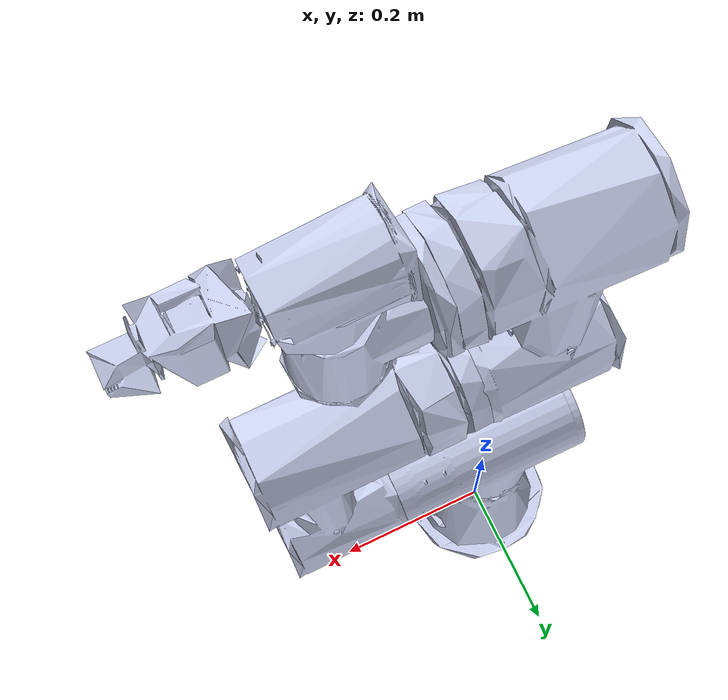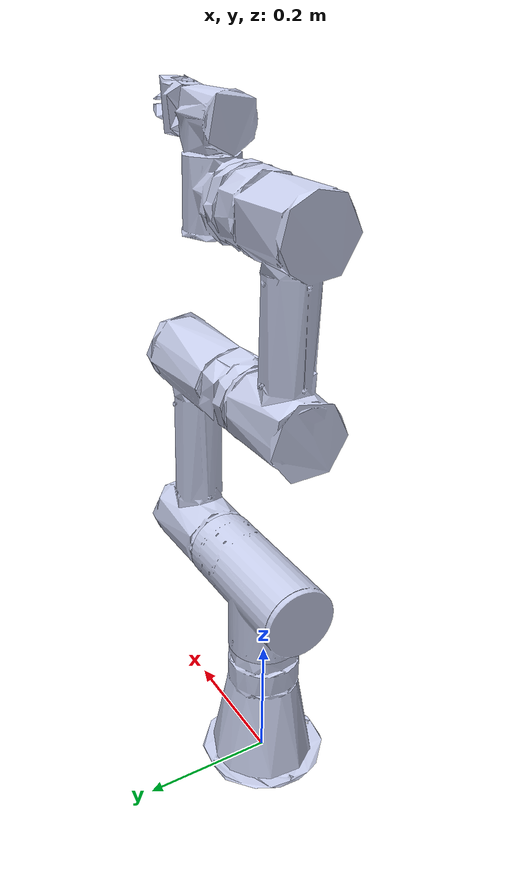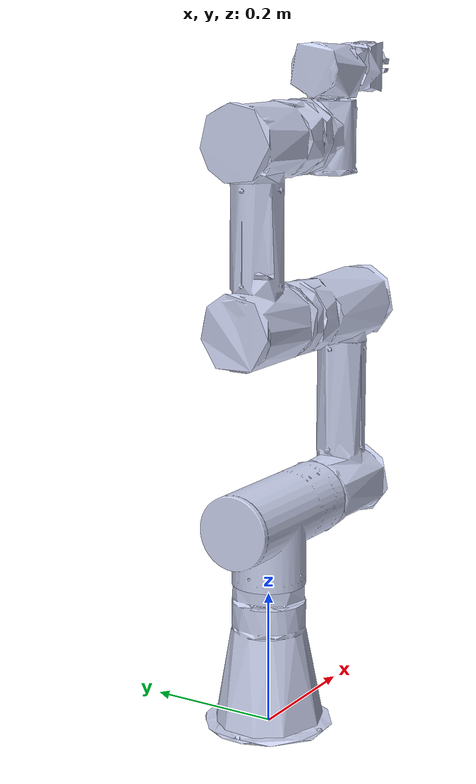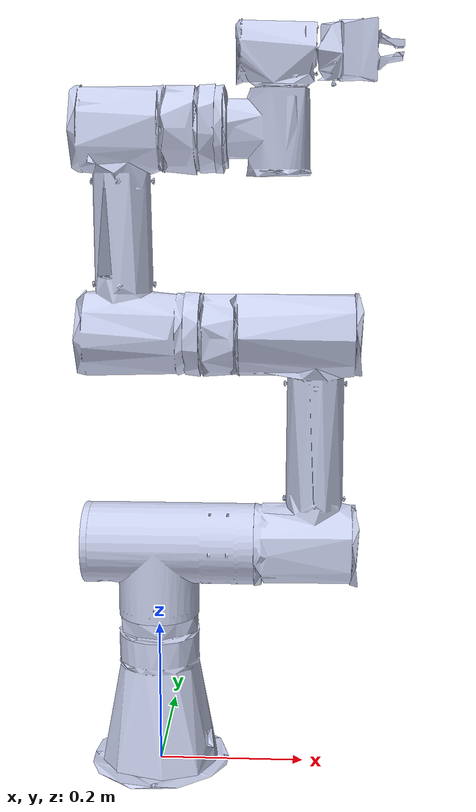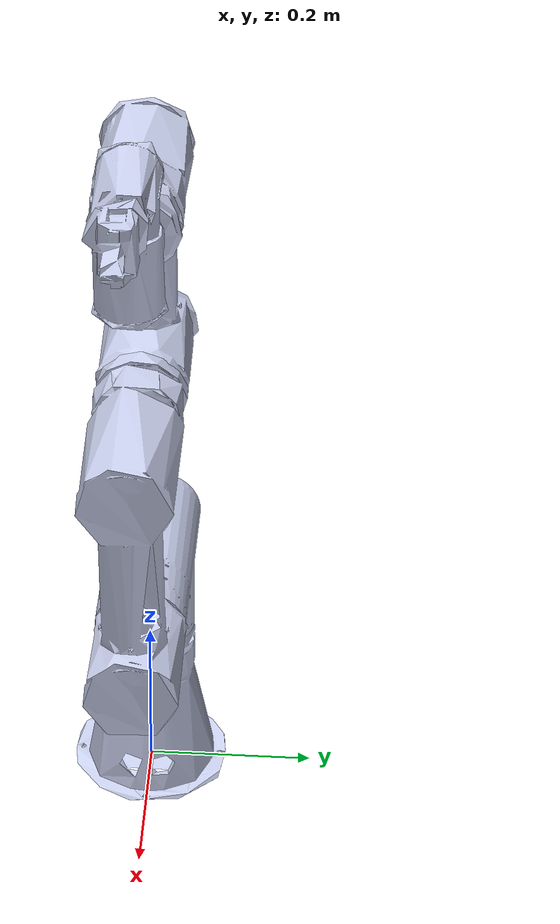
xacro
<?xml version="1.0" encoding="utf-8"?>
  <!-- NOTE: Collision geometry uses dedicated collision meshes for accurate collision detection. -->
<robot name="bb01" xmlns:xacro="http://www.ros.org/wiki/xacro">

  <xacro:arg name="add_world" default="true"/>
  <xacro:arg name="robot_name" default="bb01"/>
  <xacro:arg name="use_gazebo" default="true"/>
  <xacro:arg name="use_camera" default="false"/>

  <!-- Constants -->
  <xacro:property name="PI" value="3.1415926535897931"/>

  <!-- World link (root link with no inertia to fix KDL parser warning) -->
  <xacro:if value="$(arg add_world)">
    <link name="world"/>

    <!-- Fixed joint connecting world to base_link (named virtual_joint to match SRDF) -->
    <joint name="virtual_joint" type="fixed">
      <parent link="world"/>
      <child link="base_link"/>
      <origin xyz="0 0 0" rpy="0 0 0"/>
    </joint>
  </xacro:if>

  <link
    name="base_link">
    <inertial>
      <origin
        xyz="-0.00064601 0.10414 0.00011194"
        rpy="0 0 0" />
      <mass
        value="1.4248" />
      <inertia
        ixx="0.0031253"
        ixy="-2.6179E-05"
        ixz="2.1053E-08"
        iyy="0.003454"
        iyz="-3.3531E-08"
        izz="0.0030775" />
    </inertial>
    <visual>
      <origin
        xyz="0 0 0"
        rpy="0 0 0" />
      <geometry>
        <mesh
          filename="package://robot_description/robots/bb01/meshes/base_link.STL" />
      </geometry>
      <material
        name="">
        <color
          rgba="0.79216 0.81961 0.93333 1" />
      </material>
    </visual>
    <collision>
      <origin
        xyz="0 0 0"
        rpy="0 0 0" />
      <geometry>
        <mesh
          filename="package://robot_description/robots/bb01/meshes/collision_base_link.STL" />
      </geometry>
    </collision>
  </link>
  <link
    name="link_1">
    <inertial>
      <origin
        xyz="0.00061615 -0.035012 0.099909"
        rpy="0 0 0" />
      <mass
        value="1.0064" />
      <inertia
        ixx="0.0018231"
        ixy="-3.5154E-06"
        ixz="6.7028E-07"
        iyy="0.0020403"
        iyz="-4.7843E-05"
        izz="0.0018167" />
    </inertial>
    <visual>
      <origin
        xyz="0 0 0"
        rpy="0 0 0" />
      <geometry>
        <mesh
          filename="package://robot_description/robots/bb01/meshes/link_1.STL" />
      </geometry>
      <material
        name="">
        <color
          rgba="0.79216 0.81961 0.93333 1" />
      </material>
    </visual>
    <collision>
      <origin
        xyz="0 0 0"
        rpy="0 0 0" />
      <geometry>
        <mesh
          filename="package://robot_description/robots/bb01/meshes/collision_link_1.STL" />
      </geometry>
    </collision>
  </link>
  <joint
    name="joint_1"
    type="revolute">
    <origin
      xyz="-0.00015 -0.00015 0.19754"
      rpy="-0.0029659 -0.0010187 1.5515" />
    <parent
      link="base_link" />
    <child
      link="link_1" />
    <axis
      xyz="0.0010187 -0.0029659 1" />
    <limit
      lower="${-PI/2}"
      upper="${PI/2}"
      effort="46.74"
      velocity="10" />
  </joint>
  <link
    name="link_2">
    <inertial>
      <origin
        xyz="0.0045688 -0.11454 0.16567"
        rpy="0 0 0" />
      <mass
        value="1.5615" />
      <inertia
        ixx="0.0029543"
        ixy="-7.3979E-06"
        ixz="-7.283E-06"
        iyy="0.0034085"
        iyz="-3.5717E-05"
        izz="0.0024995" />
    </inertial>
    <visual>
      <origin
        xyz="0 0 0"
        rpy="0 0 0" />
      <geometry>
        <mesh
          filename="package://robot_description/robots/bb01/meshes/link_2.STL" />
      </geometry>
      <material
        name="">
        <color
          rgba="0.79216 0.81961 0.93333 1" />
      </material>
    </visual>
    <collision>
      <origin
        xyz="0 0 0"
        rpy="0 0 0" />
      <geometry>
        <mesh
          filename="package://robot_description/robots/bb01/meshes/collision_link_2.STL" />
      </geometry>
    </collision>
  </link>
  <joint
    name="joint_2"
    type="revolute">
    <origin
      xyz="0.00067709 -0.037871 0.12035"
      rpy="0.00043854 -0.029578 -9.4664E-05" />
    <parent
      link="link_1" />
    <child
      link="link_2" />
    <axis
      xyz="0.014776 -0.99989 -0.0029807" />
    <limit
      lower="${-PI/2}"
      upper="${PI/2}"
      effort="41.82"
      velocity="10" />
  </joint>
  <link
    name="link_3">
    <inertial>
      <origin
        xyz="0.0020327 0.038643 0.15836"
        rpy="0 0 0" />
      <mass
        value="1.343" />
      <inertia
        ixx="0.0021821"
        ixy="-9.5402E-06"
        ixz="-5.475E-06"
        iyy="0.0028133"
        iyz="-1.3279E-05"
        izz="0.0018406" />
    </inertial>
    <visual>
      <origin
        xyz="0 0 0"
        rpy="0 0 0" />
      <geometry>
        <mesh
          filename="package://robot_description/robots/bb01/meshes/link_3.STL" />
      </geometry>
      <material
        name="">
        <color
          rgba="0.79216 0.81961 0.93333 1" />
      </material>
    </visual>
    <collision>
      <origin
        xyz="0 0 0"
        rpy="0 0 0" />
      <geometry>
        <mesh
          filename="package://robot_description/robots/bb01/meshes/collision_link_3.STL" />
      </geometry>
    </collision>
  </link>
  <joint
    name="joint_3"
    type="revolute">
    <origin
      xyz="0.0049974 -0.00078395 0.28776"
      rpy="-8.4251E-05 0.0057043 1.6764E-05" />
    <parent
      link="link_2" />
    <child
      link="link_3" />
    <axis
      xyz="-0.014776 0.99989 0.0029807" />
    <limit
      lower="${-PI/2}"
      upper="${PI/2}"
      effort="24.27"
      velocity="10" />
  </joint>
  <link
    name="link_4">
    <inertial>
      <origin
        xyz="0.0010152 -0.070015 -0.0023299"
        rpy="0 0 0" />
      <mass
        value="0.55046" />
      <inertia
        ixx="0.00049665"
        ixy="-9.6215E-07"
        ixz="-2.2578E-07"
        iyy="0.00057531"
        iyz="1.3716E-05"
        izz="0.00048379" />
    </inertial>
    <visual>
      <origin
        xyz="0 0 0"
        rpy="0 0 0" />
      <geometry>
        <mesh
          filename="package://robot_description/robots/bb01/meshes/link_4.STL" />
      </geometry>
      <material
        name="">
        <color
          rgba="0.79216 0.81961 0.93333 1" />
      </material>
    </visual>
    <collision>
      <origin
        xyz="0 0 0"
        rpy="0 0 0" />
      <geometry>
        <mesh
          filename="package://robot_description/robots/bb01/meshes/collision_link_4.STL" />
      </geometry>
    </collision>
  </link>
  <joint
    name="joint_4"
    type="revolute">
    <origin
      xyz="0.0046491 -0.022703 0.2623"
      rpy="7.8447E-05 -0.0053054 -1.6024E-05" />
    <parent
      link="link_3" />
    <child
      link="link_4" />
    <axis
      xyz="0.014776 -0.99989 -0.0029807" />
    <limit
      lower="${-PI/2}"
      upper="${PI/2}"
      effort="1.85"
      velocity="10" />
  </joint>
  <link
    name="link_5">
    <inertial>
      <origin
        xyz="0.00053971 0.0038265 0.053589"
        rpy="0 0 0" />
      <mass
        value="0.29573" />
      <inertia
        ixx="0.00022719"
        ixy="-1.8364E-07"
        ixz="-1.3865E-07"
        iyy="0.0002382"
        iyz="6.6998E-06"
        izz="0.00022535" />
    </inertial>
    <visual>
      <origin
        xyz="0 0 0"
        rpy="0 0 0" />
      <geometry>
        <mesh
          filename="package://robot_description/robots/bb01/meshes/link_5.STL" />
      </geometry>
      <material
        name="">
        <color
          rgba="0.79216 0.81961 0.93333 1" />
      </material>
    </visual>
    <collision>
      <origin
        xyz="0 0 0"
        rpy="0 0 0" />
      <geometry>
        <mesh
          filename="package://robot_description/robots/bb01/meshes/collision_link_5.STL" />
      </geometry>
    </collision>
  </link>
  <joint
    name="joint_5"
    type="revolute">
    <origin
      xyz="0.0019288 -0.10207 0.038213"
      rpy="-8.2251E-05 2.0839E-05 -0.0075015" />
    <parent
      link="link_4" />
    <child
      link="link_5" />
    <axis
      xyz="0.010953 -0.0028189 0.99994" />
    <limit
      lower="${-PI/2}"
      upper="${PI/2}"
      effort="2.03"
      velocity="10" />
  </joint>
  <link
    name="link_6">
    <inertial>
      <origin
        xyz="0.00067829 -0.046337 -0.00080576"
        rpy="0 0 0" />
      <mass
        value="0.19845" />
      <inertia
        ixx="9.3187E-05"
        ixy="-2.5318E-07"
        ixz="1.7378E-07"
        iyy="0.00011246"
        iyz="2.0627E-06"
        izz="7.0288E-05" />
    </inertial>
    <visual>
      <origin
        xyz="0 0 0"
        rpy="0 0 0" />
      <geometry>
        <mesh
          filename="package://robot_description/robots/bb01/meshes/link_6.STL" />
      </geometry>
      <material
        name="">
        <color
          rgba="0.79216 0.81961 0.93333 1" />
      </material>
    </visual>
    <collision>
      <origin
        xyz="0 0 0"
        rpy="0 0 0" />
      <geometry>
        <mesh
          filename="package://robot_description/robots/bb01/meshes/collision_link_6.STL" />
      </geometry>
    </collision>
  </link>
  <joint
    name="joint_6"
    type="revolute">
    <origin
      xyz="0.0012818 -0.045033 0.056344"
      rpy="-8.9373E-05 0.0060513 1.7769E-05" />
    <parent
      link="link_5" />
    <child
      link="link_6" />
    <axis
      xyz="-0.014776 0.99989 0.0029807" />
    <limit
      lower="${-PI/2}"
      upper="${PI/2}"
      effort="0.45"
      velocity="10" />
  </joint>

  <!-- Include Gazebo ros2_control plugin -->
  <xacro:include filename="$(find robot_description)/robots/bb01/urdf/control/gazebo_sim_ros2_control.urdf.xacro" />
  <xacro:load_gazebo_sim_ros2_control_plugin
      robot_name="$(arg robot_name)"
      use_gazebo="$(arg use_gazebo)"/>

  <!-- Include ros2_control joint interfaces -->
  <xacro:include filename="$(find robot_description)/robots/bb01/urdf/control/bb01_ros2_control.urdf.xacro" />
  <xacro:bb01_ros2_control
      use_gazebo="$(arg use_gazebo)"/>

</robot>
